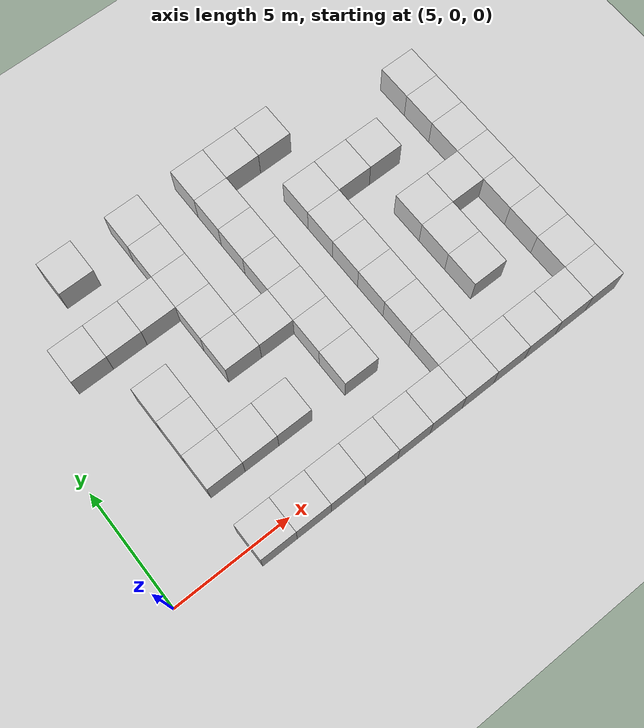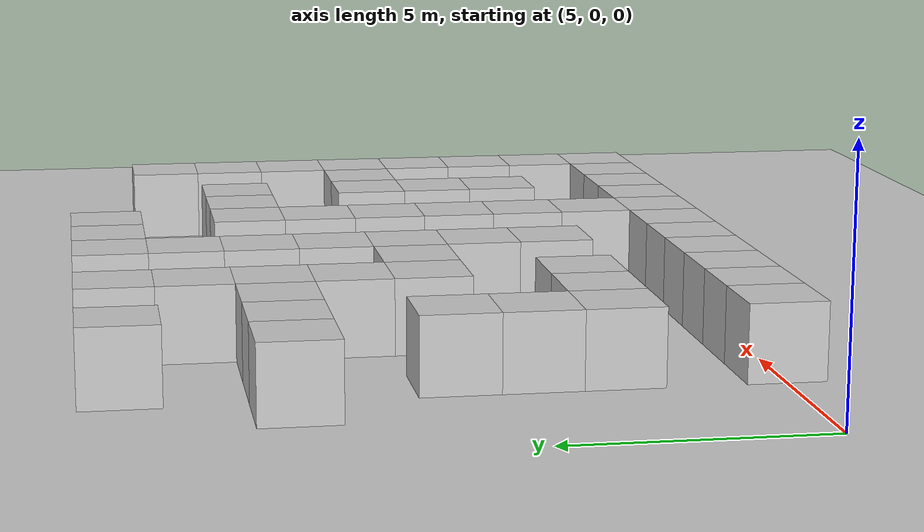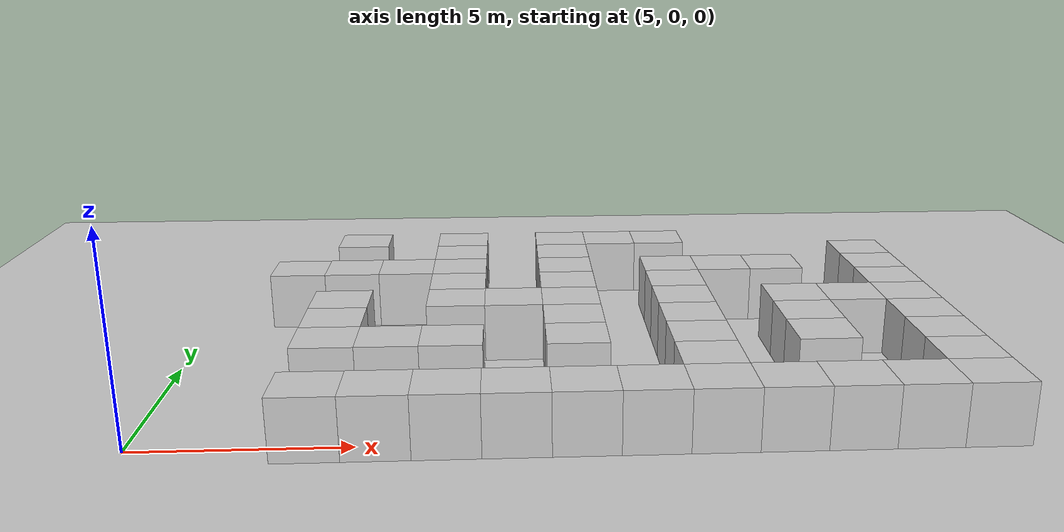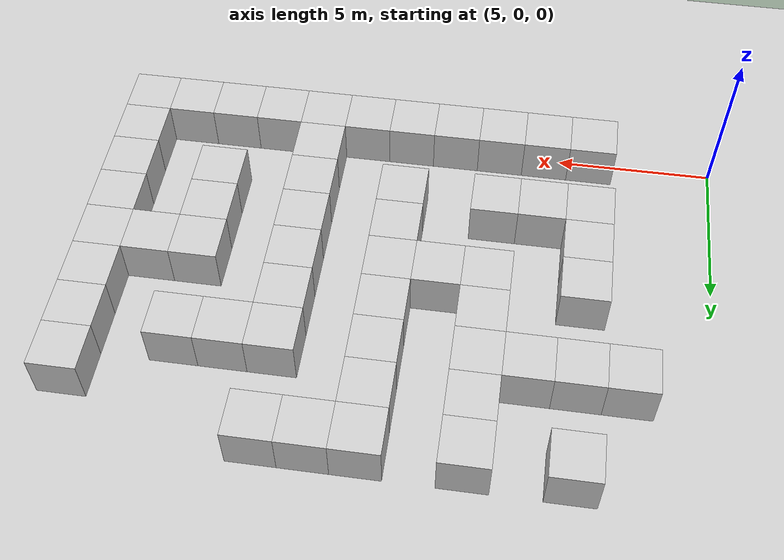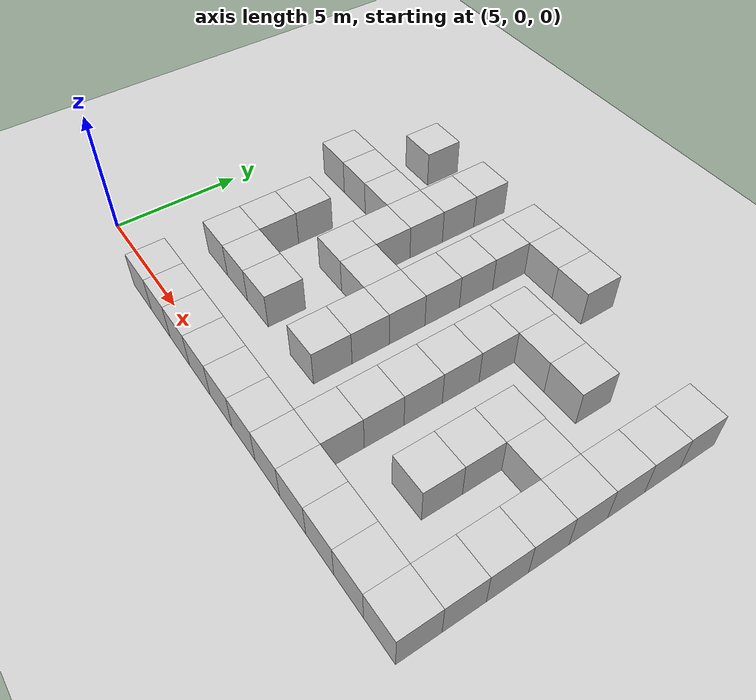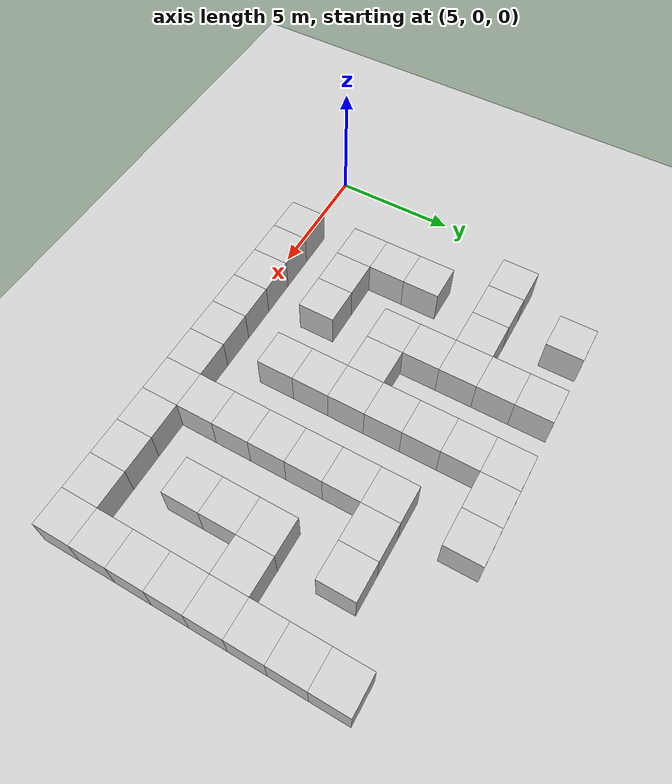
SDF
<sdf version="1.9">
 <world name="maze_world">
  <include><uri>https://fuel.gazebosim.org/1.0/OpenRobotics/models/Sun</uri></include>
  <include><uri>https://fuel.gazebosim.org/1.0/OpenRobotics/models/Ground Plane</uri></include>
  <model name="wall_6_0">
   <static>true</static>
   <pose>9 0 0.75 0 0 0</pose>
   <link name="link">
    <collision name="collision"><geometry><box><size>1.5 1.5 1.5</size></box></geometry></collision>
    <visual name="visual">
     <geometry><box><size>1.5 1.5 1.5</size></box></geometry>
     <material>
      <ambient>0.8 0.8 0.8 1</ambient>
      <diffuse>0.8 0.8 0.8 1</diffuse>
      <pbr>
       <metal>
        <albedo_map>file:///home/max/Repos/DHBW-Robotik/maze_runner_ws/src/maze_runner_gazebo/textures/simple_box.png</albedo_map>
        <roughness>0.9</roughness>
       </metal>
      </pbr>
     </material>
    </visual>
   </link>
  </model>
  <model name="wall_7_0">
   <static>true</static>
   <pose>10.5 0 0.75 0 0 0</pose>
   <link name="link">
    <collision name="collision"><geometry><box><size>1.5 1.5 1.5</size></box></geometry></collision>
    <visual name="visual">
     <geometry><box><size>1.5 1.5 1.5</size></box></geometry>
     <material>
      <ambient>0.8 0.8 0.8 1</ambient>
      <diffuse>0.8 0.8 0.8 1</diffuse>
      <pbr>
       <metal>
        <albedo_map>file:///home/max/Repos/DHBW-Robotik/maze_runner_ws/src/maze_runner_gazebo/textures/simple_box.png</albedo_map>
        <roughness>0.9</roughness>
       </metal>
      </pbr>
     </material>
    </visual>
   </link>
  </model>
  <model name="wall_8_0">
   <static>true</static>
   <pose>12 0 0.75 0 0 0</pose>
   <link name="link">
    <collision name="collision"><geometry><box><size>1.5 1.5 1.5</size></box></geometry></collision>
    <visual name="visual">
     <geometry><box><size>1.5 1.5 1.5</size></box></geometry>
     <material>
      <ambient>0.8 0.8 0.8 1</ambient>
      <diffuse>0.8 0.8 0.8 1</diffuse>
      <pbr>
       <metal>
        <albedo_map>file:///home/max/Repos/DHBW-Robotik/maze_runner_ws/src/maze_runner_gazebo/textures/simple_box.png</albedo_map>
        <roughness>0.9</roughness>
       </metal>
      </pbr>
     </material>
    </visual>
   </link>
  </model>
  <model name="wall_9_0">
   <static>true</static>
   <pose>13.5 0 0.75 0 0 0</pose>
   <link name="link">
    <collision name="collision"><geometry><box><size>1.5 1.5 1.5</size></box></geometry></collision>
    <visual name="visual">
     <geometry><box><size>1.5 1.5 1.5</size></box></geometry>
     <material>
      <ambient>0.8 0.8 0.8 1</ambient>
      <diffuse>0.8 0.8 0.8 1</diffuse>
      <pbr>
       <metal>
        <albedo_map>file:///home/max/Repos/DHBW-Robotik/maze_runner_ws/src/maze_runner_gazebo/textures/simple_box.png</albedo_map>
        <roughness>0.9</roughness>
       </metal>
      </pbr>
     </material>
    </visual>
   </link>
  </model>
  <model name="wall_10_0">
   <static>true</static>
   <pose>15 0 0.75 0 0 0</pose>
   <link name="link">
    <collision name="collision"><geometry><box><size>1.5 1.5 1.5</size></box></geometry></collision>
    <visual name="visual">
     <geometry><box><size>1.5 1.5 1.5</size></box></geometry>
     <material>
      <ambient>0.8 0.8 0.8 1</ambient>
      <diffuse>0.8 0.8 0.8 1</diffuse>
      <pbr>
       <metal>
        <albedo_map>file:///home/max/Repos/DHBW-Robotik/maze_runner_ws/src/maze_runner_gazebo/textures/simple_box.png</albedo_map>
        <roughness>0.9</roughness>
       </metal>
      </pbr>
     </material>
    </visual>
   </link>
  </model>
  <model name="wall_11_0">
   <static>true</static>
   <pose>16.5 0 0.75 0 0 0</pose>
   <link name="link">
    <collision name="collision"><geometry><box><size>1.5 1.5 1.5</size></box></geometry></collision>
    <visual name="visual">
     <geometry><box><size>1.5 1.5 1.5</size></box></geometry>
     <material>
      <ambient>0.8 0.8 0.8 1</ambient>
      <diffuse>0.8 0.8 0.8 1</diffuse>
      <pbr>
       <metal>
        <albedo_map>file:///home/max/Repos/DHBW-Robotik/maze_runner_ws/src/maze_runner_gazebo/textures/simple_box.png</albedo_map>
        <roughness>0.9</roughness>
       </metal>
      </pbr>
     </material>
    </visual>
   </link>
  </model>
  <model name="wall_12_0">
   <static>true</static>
   <pose>18 0 0.75 0 0 0</pose>
   <link name="link">
    <collision name="collision"><geometry><box><size>1.5 1.5 1.5</size></box></geometry></collision>
    <visual name="visual">
     <geometry><box><size>1.5 1.5 1.5</size></box></geometry>
     <material>
      <ambient>0.8 0.8 0.8 1</ambient>
      <diffuse>0.8 0.8 0.8 1</diffuse>
      <pbr>
       <metal>
        <albedo_map>file:///home/max/Repos/DHBW-Robotik/maze_runner_ws/src/maze_runner_gazebo/textures/simple_box.png</albedo_map>
        <roughness>0.9</roughness>
       </metal>
      </pbr>
     </material>
    </visual>
   </link>
  </model>
  <model name="wall_13_0">
   <static>true</static>
   <pose>19.5 0 0.75 0 0 0</pose>
   <link name="link">
    <collision name="collision"><geometry><box><size>1.5 1.5 1.5</size></box></geometry></collision>
    <visual name="visual">
     <geometry><box><size>1.5 1.5 1.5</size></box></geometry>
     <material>
      <ambient>0.8 0.8 0.8 1</ambient>
      <diffuse>0.8 0.8 0.8 1</diffuse>
      <pbr>
       <metal>
        <albedo_map>file:///home/max/Repos/DHBW-Robotik/maze_runner_ws/src/maze_runner_gazebo/textures/simple_box.png</albedo_map>
        <roughness>0.9</roughness>
       </metal>
      </pbr>
     </material>
    </visual>
   </link>
  </model>
  <model name="wall_14_0">
   <static>true</static>
   <pose>21 0 0.75 0 0 0</pose>
   <link name="link">
    <collision name="collision"><geometry><box><size>1.5 1.5 1.5</size></box></geometry></collision>
    <visual name="visual">
     <geometry><box><size>1.5 1.5 1.5</size></box></geometry>
     <material>
      <ambient>0.8 0.8 0.8 1</ambient>
      <diffuse>0.8 0.8 0.8 1</diffuse>
      <pbr>
       <metal>
        <albedo_map>file:///home/max/Repos/DHBW-Robotik/maze_runner_ws/src/maze_runner_gazebo/textures/simple_box.png</albedo_map>
        <roughness>0.9</roughness>
       </metal>
      </pbr>
     </material>
    </visual>
   </link>
  </model>
  <model name="wall_15_0">
   <static>true</static>
   <pose>22.5 0 0.75 0 0 0</pose>
   <link name="link">
    <collision name="collision"><geometry><box><size>1.5 1.5 1.5</size></box></geometry></collision>
    <visual name="visual">
     <geometry><box><size>1.5 1.5 1.5</size></box></geometry>
     <material>
      <ambient>0.8 0.8 0.8 1</ambient>
      <diffuse>0.8 0.8 0.8 1</diffuse>
      <pbr>
       <metal>
        <albedo_map>file:///home/max/Repos/DHBW-Robotik/maze_runner_ws/src/maze_runner_gazebo/textures/simple_box.png</albedo_map>
        <roughness>0.9</roughness>
       </metal>
      </pbr>
     </material>
    </visual>
   </link>
  </model>
  <model name="wall_16_0">
   <static>true</static>
   <pose>24 0 0.75 0 0 0</pose>
   <link name="link">
    <collision name="collision"><geometry><box><size>1.5 1.5 1.5</size></box></geometry></collision>
    <visual name="visual">
     <geometry><box><size>1.5 1.5 1.5</size></box></geometry>
     <material>
      <ambient>0.8 0.8 0.8 1</ambient>
      <diffuse>0.8 0.8 0.8 1</diffuse>
      <pbr>
       <metal>
        <albedo_map>file:///home/max/Repos/DHBW-Robotik/maze_runner_ws/src/maze_runner_gazebo/textures/simple_box.png</albedo_map>
        <roughness>0.9</roughness>
       </metal>
      </pbr>
     </material>
    </visual>
   </link>
  </model>
  <model name="wall_12_1">
   <static>true</static>
   <pose>18 1.5 0.75 0 0 0</pose>
   <link name="link">
    <collision name="collision"><geometry><box><size>1.5 1.5 1.5</size></box></geometry></collision>
    <visual name="visual">
     <geometry><box><size>1.5 1.5 1.5</size></box></geometry>
     <material>
      <ambient>0.8 0.8 0.8 1</ambient>
      <diffuse>0.8 0.8 0.8 1</diffuse>
      <pbr>
       <metal>
        <albedo_map>file:///home/max/Repos/DHBW-Robotik/maze_runner_ws/src/maze_runner_gazebo/textures/simple_box.png</albedo_map>
        <roughness>0.9</roughness>
       </metal>
      </pbr>
     </material>
    </visual>
   </link>
  </model>
  <model name="wall_16_1">
   <static>true</static>
   <pose>24 1.5 0.75 0 0 0</pose>
   <link name="link">
    <collision name="collision"><geometry><box><size>1.5 1.5 1.5</size></box></geometry></collision>
    <visual name="visual">
     <geometry><box><size>1.5 1.5 1.5</size></box></geometry>
     <material>
      <ambient>0.8 0.8 0.8 1</ambient>
      <diffuse>0.8 0.8 0.8 1</diffuse>
      <pbr>
       <metal>
        <albedo_map>file:///home/max/Repos/DHBW-Robotik/maze_runner_ws/src/maze_runner_gazebo/textures/simple_box.png</albedo_map>
        <roughness>0.9</roughness>
       </metal>
      </pbr>
     </material>
    </visual>
   </link>
  </model>
  <model name="wall_6_2">
   <static>true</static>
   <pose>9 3 0.75 0 0 0</pose>
   <link name="link">
    <collision name="collision"><geometry><box><size>1.5 1.5 1.5</size></box></geometry></collision>
    <visual name="visual">
     <geometry><box><size>1.5 1.5 1.5</size></box></geometry>
     <material>
      <ambient>0.8 0.8 0.8 1</ambient>
      <diffuse>0.8 0.8 0.8 1</diffuse>
      <pbr>
       <metal>
        <albedo_map>file:///home/max/Repos/DHBW-Robotik/maze_runner_ws/src/maze_runner_gazebo/textures/simple_box.png</albedo_map>
        <roughness>0.9</roughness>
       </metal>
      </pbr>
     </material>
    </visual>
   </link>
  </model>
  <model name="wall_7_2">
   <static>true</static>
   <pose>10.5 3 0.75 0 0 0</pose>
   <link name="link">
    <collision name="collision"><geometry><box><size>1.5 1.5 1.5</size></box></geometry></collision>
    <visual name="visual">
     <geometry><box><size>1.5 1.5 1.5</size></box></geometry>
     <material>
      <ambient>0.8 0.8 0.8 1</ambient>
      <diffuse>0.8 0.8 0.8 1</diffuse>
      <pbr>
       <metal>
        <albedo_map>file:///home/max/Repos/DHBW-Robotik/maze_runner_ws/src/maze_runner_gazebo/textures/simple_box.png</albedo_map>
        <roughness>0.9</roughness>
       </metal>
      </pbr>
     </material>
    </visual>
   </link>
  </model>
  <model name="wall_8_2">
   <static>true</static>
   <pose>12 3 0.75 0 0 0</pose>
   <link name="link">
    <collision name="collision"><geometry><box><size>1.5 1.5 1.5</size></box></geometry></collision>
    <visual name="visual">
     <geometry><box><size>1.5 1.5 1.5</size></box></geometry>
     <material>
      <ambient>0.8 0.8 0.8 1</ambient>
      <diffuse>0.8 0.8 0.8 1</diffuse>
      <pbr>
       <metal>
        <albedo_map>file:///home/max/Repos/DHBW-Robotik/maze_runner_ws/src/maze_runner_gazebo/textures/simple_box.png</albedo_map>
        <roughness>0.9</roughness>
       </metal>
      </pbr>
     </material>
    </visual>
   </link>
  </model>
  <model name="wall_10_2">
   <static>true</static>
   <pose>15 3 0.75 0 0 0</pose>
   <link name="link">
    <collision name="collision"><geometry><box><size>1.5 1.5 1.5</size></box></geometry></collision>
    <visual name="visual">
     <geometry><box><size>1.5 1.5 1.5</size></box></geometry>
     <material>
      <ambient>0.8 0.8 0.8 1</ambient>
      <diffuse>0.8 0.8 0.8 1</diffuse>
      <pbr>
       <metal>
        <albedo_map>file:///home/max/Repos/DHBW-Robotik/maze_runner_ws/src/maze_runner_gazebo/textures/simple_box.png</albedo_map>
        <roughness>0.9</roughness>
       </metal>
      </pbr>
     </material>
    </visual>
   </link>
  </model>
  <model name="wall_12_2">
   <static>true</static>
   <pose>18 3 0.75 0 0 0</pose>
   <link name="link">
    <collision name="collision"><geometry><box><size>1.5 1.5 1.5</size></box></geometry></collision>
    <visual name="visual">
     <geometry><box><size>1.5 1.5 1.5</size></box></geometry>
     <material>
      <ambient>0.8 0.8 0.8 1</ambient>
      <diffuse>0.8 0.8 0.8 1</diffuse>
      <pbr>
       <metal>
        <albedo_map>file:///home/max/Repos/DHBW-Robotik/maze_runner_ws/src/maze_runner_gazebo/textures/simple_box.png</albedo_map>
        <roughness>0.9</roughness>
       </metal>
      </pbr>
     </material>
    </visual>
   </link>
  </model>
  <model name="wall_14_2">
   <static>true</static>
   <pose>21 3 0.75 0 0 0</pose>
   <link name="link">
    <collision name="collision"><geometry><box><size>1.5 1.5 1.5</size></box></geometry></collision>
    <visual name="visual">
     <geometry><box><size>1.5 1.5 1.5</size></box></geometry>
     <material>
      <ambient>0.8 0.8 0.8 1</ambient>
      <diffuse>0.8 0.8 0.8 1</diffuse>
      <pbr>
       <metal>
        <albedo_map>file:///home/max/Repos/DHBW-Robotik/maze_runner_ws/src/maze_runner_gazebo/textures/simple_box.png</albedo_map>
        <roughness>0.9</roughness>
       </metal>
      </pbr>
     </material>
    </visual>
   </link>
  </model>
  <model name="wall_16_2">
   <static>true</static>
   <pose>24 3 0.75 0 0 0</pose>
   <link name="link">
    <collision name="collision"><geometry><box><size>1.5 1.5 1.5</size></box></geometry></collision>
    <visual name="visual">
     <geometry><box><size>1.5 1.5 1.5</size></box></geometry>
     <material>
      <ambient>0.8 0.8 0.8 1</ambient>
      <diffuse>0.8 0.8 0.8 1</diffuse>
      <pbr>
       <metal>
        <albedo_map>file:///home/max/Repos/DHBW-Robotik/maze_runner_ws/src/maze_runner_gazebo/textures/simple_box.png</albedo_map>
        <roughness>0.9</roughness>
       </metal>
      </pbr>
     </material>
    </visual>
   </link>
  </model>
  <model name="wall_6_3">
   <static>true</static>
   <pose>9 4.5 0.75 0 0 0</pose>
   <link name="link">
    <collision name="collision"><geometry><box><size>1.5 1.5 1.5</size></box></geometry></collision>
    <visual name="visual">
     <geometry><box><size>1.5 1.5 1.5</size></box></geometry>
     <material>
      <ambient>0.8 0.8 0.8 1</ambient>
      <diffuse>0.8 0.8 0.8 1</diffuse>
      <pbr>
       <metal>
        <albedo_map>file:///home/max/Repos/DHBW-Robotik/maze_runner_ws/src/maze_runner_gazebo/textures/simple_box.png</albedo_map>
        <roughness>0.9</roughness>
       </metal>
      </pbr>
     </material>
    </visual>
   </link>
  </model>
  <model name="wall_10_3">
   <static>true</static>
   <pose>15 4.5 0.75 0 0 0</pose>
   <link name="link">
    <collision name="collision"><geometry><box><size>1.5 1.5 1.5</size></box></geometry></collision>
    <visual name="visual">
     <geometry><box><size>1.5 1.5 1.5</size></box></geometry>
     <material>
      <ambient>0.8 0.8 0.8 1</ambient>
      <diffuse>0.8 0.8 0.8 1</diffuse>
      <pbr>
       <metal>
        <albedo_map>file:///home/max/Repos/DHBW-Robotik/maze_runner_ws/src/maze_runner_gazebo/textures/simple_box.png</albedo_map>
        <roughness>0.9</roughness>
       </metal>
      </pbr>
     </material>
    </visual>
   </link>
  </model>
  <model name="wall_12_3">
   <static>true</static>
   <pose>18 4.5 0.75 0 0 0</pose>
   <link name="link">
    <collision name="collision"><geometry><box><size>1.5 1.5 1.5</size></box></geometry></collision>
    <visual name="visual">
     <geometry><box><size>1.5 1.5 1.5</size></box></geometry>
     <material>
      <ambient>0.8 0.8 0.8 1</ambient>
      <diffuse>0.8 0.8 0.8 1</diffuse>
      <pbr>
       <metal>
        <albedo_map>file:///home/max/Repos/DHBW-Robotik/maze_runner_ws/src/maze_runner_gazebo/textures/simple_box.png</albedo_map>
        <roughness>0.9</roughness>
       </metal>
      </pbr>
     </material>
    </visual>
   </link>
  </model>
  <model name="wall_14_3">
   <static>true</static>
   <pose>21 4.5 0.75 0 0 0</pose>
   <link name="link">
    <collision name="collision"><geometry><box><size>1.5 1.5 1.5</size></box></geometry></collision>
    <visual name="visual">
     <geometry><box><size>1.5 1.5 1.5</size></box></geometry>
     <material>
      <ambient>0.8 0.8 0.8 1</ambient>
      <diffuse>0.8 0.8 0.8 1</diffuse>
      <pbr>
       <metal>
        <albedo_map>file:///home/max/Repos/DHBW-Robotik/maze_runner_ws/src/maze_runner_gazebo/textures/simple_box.png</albedo_map>
        <roughness>0.9</roughness>
       </metal>
      </pbr>
     </material>
    </visual>
   </link>
  </model>
  <model name="wall_16_3">
   <static>true</static>
   <pose>24 4.5 0.75 0 0 0</pose>
   <link name="link">
    <collision name="collision"><geometry><box><size>1.5 1.5 1.5</size></box></geometry></collision>
    <visual name="visual">
     <geometry><box><size>1.5 1.5 1.5</size></box></geometry>
     <material>
      <ambient>0.8 0.8 0.8 1</ambient>
      <diffuse>0.8 0.8 0.8 1</diffuse>
      <pbr>
       <metal>
        <albedo_map>file:///home/max/Repos/DHBW-Robotik/maze_runner_ws/src/maze_runner_gazebo/textures/simple_box.png</albedo_map>
        <roughness>0.9</roughness>
       </metal>
      </pbr>
     </material>
    </visual>
   </link>
  </model>
  <model name="wall_6_4">
   <static>true</static>
   <pose>9 6 0.75 0 0 0</pose>
   <link name="link">
    <collision name="collision"><geometry><box><size>1.5 1.5 1.5</size></box></geometry></collision>
    <visual name="visual">
     <geometry><box><size>1.5 1.5 1.5</size></box></geometry>
     <material>
      <ambient>0.8 0.8 0.8 1</ambient>
      <diffuse>0.8 0.8 0.8 1</diffuse>
      <pbr>
       <metal>
        <albedo_map>file:///home/max/Repos/DHBW-Robotik/maze_runner_ws/src/maze_runner_gazebo/textures/simple_box.png</albedo_map>
        <roughness>0.9</roughness>
       </metal>
      </pbr>
     </material>
    </visual>
   </link>
  </model>
  <model name="wall_8_4">
   <static>true</static>
   <pose>12 6 0.75 0 0 0</pose>
   <link name="link">
    <collision name="collision"><geometry><box><size>1.5 1.5 1.5</size></box></geometry></collision>
    <visual name="visual">
     <geometry><box><size>1.5 1.5 1.5</size></box></geometry>
     <material>
      <ambient>0.8 0.8 0.8 1</ambient>
      <diffuse>0.8 0.8 0.8 1</diffuse>
      <pbr>
       <metal>
        <albedo_map>file:///home/max/Repos/DHBW-Robotik/maze_runner_ws/src/maze_runner_gazebo/textures/simple_box.png</albedo_map>
        <roughness>0.9</roughness>
       </metal>
      </pbr>
     </material>
    </visual>
   </link>
  </model>
  <model name="wall_9_4">
   <static>true</static>
   <pose>13.5 6 0.75 0 0 0</pose>
   <link name="link">
    <collision name="collision"><geometry><box><size>1.5 1.5 1.5</size></box></geometry></collision>
    <visual name="visual">
     <geometry><box><size>1.5 1.5 1.5</size></box></geometry>
     <material>
      <ambient>0.8 0.8 0.8 1</ambient>
      <diffuse>0.8 0.8 0.8 1</diffuse>
      <pbr>
       <metal>
        <albedo_map>file:///home/max/Repos/DHBW-Robotik/maze_runner_ws/src/maze_runner_gazebo/textures/simple_box.png</albedo_map>
        <roughness>0.9</roughness>
       </metal>
      </pbr>
     </material>
    </visual>
   </link>
  </model>
  <model name="wall_10_4">
   <static>true</static>
   <pose>15 6 0.75 0 0 0</pose>
   <link name="link">
    <collision name="collision"><geometry><box><size>1.5 1.5 1.5</size></box></geometry></collision>
    <visual name="visual">
     <geometry><box><size>1.5 1.5 1.5</size></box></geometry>
     <material>
      <ambient>0.8 0.8 0.8 1</ambient>
      <diffuse>0.8 0.8 0.8 1</diffuse>
      <pbr>
       <metal>
        <albedo_map>file:///home/max/Repos/DHBW-Robotik/maze_runner_ws/src/maze_runner_gazebo/textures/simple_box.png</albedo_map>
        <roughness>0.9</roughness>
       </metal>
      </pbr>
     </material>
    </visual>
   </link>
  </model>
  <model name="wall_12_4">
   <static>true</static>
   <pose>18 6 0.75 0 0 0</pose>
   <link name="link">
    <collision name="collision"><geometry><box><size>1.5 1.5 1.5</size></box></geometry></collision>
    <visual name="visual">
     <geometry><box><size>1.5 1.5 1.5</size></box></geometry>
     <material>
      <ambient>0.8 0.8 0.8 1</ambient>
      <diffuse>0.8 0.8 0.8 1</diffuse>
      <pbr>
       <metal>
        <albedo_map>file:///home/max/Repos/DHBW-Robotik/maze_runner_ws/src/maze_runner_gazebo/textures/simple_box.png</albedo_map>
        <roughness>0.9</roughness>
       </metal>
      </pbr>
     </material>
    </visual>
   </link>
  </model>
  <model name="wall_14_4">
   <static>true</static>
   <pose>21 6 0.75 0 0 0</pose>
   <link name="link">
    <collision name="collision"><geometry><box><size>1.5 1.5 1.5</size></box></geometry></collision>
    <visual name="visual">
     <geometry><box><size>1.5 1.5 1.5</size></box></geometry>
     <material>
      <ambient>0.8 0.8 0.8 1</ambient>
      <diffuse>0.8 0.8 0.8 1</diffuse>
      <pbr>
       <metal>
        <albedo_map>file:///home/max/Repos/DHBW-Robotik/maze_runner_ws/src/maze_runner_gazebo/textures/simple_box.png</albedo_map>
        <roughness>0.9</roughness>
       </metal>
      </pbr>
     </material>
    </visual>
   </link>
  </model>
  <model name="wall_15_4">
   <static>true</static>
   <pose>22.5 6 0.75 0 0 0</pose>
   <link name="link">
    <collision name="collision"><geometry><box><size>1.5 1.5 1.5</size></box></geometry></collision>
    <visual name="visual">
     <geometry><box><size>1.5 1.5 1.5</size></box></geometry>
     <material>
      <ambient>0.8 0.8 0.8 1</ambient>
      <diffuse>0.8 0.8 0.8 1</diffuse>
      <pbr>
       <metal>
        <albedo_map>file:///home/max/Repos/DHBW-Robotik/maze_runner_ws/src/maze_runner_gazebo/textures/simple_box.png</albedo_map>
        <roughness>0.9</roughness>
       </metal>
      </pbr>
     </material>
    </visual>
   </link>
  </model>
  <model name="wall_16_4">
   <static>true</static>
   <pose>24 6 0.75 0 0 0</pose>
   <link name="link">
    <collision name="collision"><geometry><box><size>1.5 1.5 1.5</size></box></geometry></collision>
    <visual name="visual">
     <geometry><box><size>1.5 1.5 1.5</size></box></geometry>
     <material>
      <ambient>0.8 0.8 0.8 1</ambient>
      <diffuse>0.8 0.8 0.8 1</diffuse>
      <pbr>
       <metal>
        <albedo_map>file:///home/max/Repos/DHBW-Robotik/maze_runner_ws/src/maze_runner_gazebo/textures/simple_box.png</albedo_map>
        <roughness>0.9</roughness>
       </metal>
      </pbr>
     </material>
    </visual>
   </link>
  </model>
  <model name="wall_8_5">
   <static>true</static>
   <pose>12 7.5 0.75 0 0 0</pose>
   <link name="link">
    <collision name="collision"><geometry><box><size>1.5 1.5 1.5</size></box></geometry></collision>
    <visual name="visual">
     <geometry><box><size>1.5 1.5 1.5</size></box></geometry>
     <material>
      <ambient>0.8 0.8 0.8 1</ambient>
      <diffuse>0.8 0.8 0.8 1</diffuse>
      <pbr>
       <metal>
        <albedo_map>file:///home/max/Repos/DHBW-Robotik/maze_runner_ws/src/maze_runner_gazebo/textures/simple_box.png</albedo_map>
        <roughness>0.9</roughness>
       </metal>
      </pbr>
     </material>
    </visual>
   </link>
  </model>
  <model name="wall_10_5">
   <static>true</static>
   <pose>15 7.5 0.75 0 0 0</pose>
   <link name="link">
    <collision name="collision"><geometry><box><size>1.5 1.5 1.5</size></box></geometry></collision>
    <visual name="visual">
     <geometry><box><size>1.5 1.5 1.5</size></box></geometry>
     <material>
      <ambient>0.8 0.8 0.8 1</ambient>
      <diffuse>0.8 0.8 0.8 1</diffuse>
      <pbr>
       <metal>
        <albedo_map>file:///home/max/Repos/DHBW-Robotik/maze_runner_ws/src/maze_runner_gazebo/textures/simple_box.png</albedo_map>
        <roughness>0.9</roughness>
       </metal>
      </pbr>
     </material>
    </visual>
   </link>
  </model>
  <model name="wall_12_5">
   <static>true</static>
   <pose>18 7.5 0.75 0 0 0</pose>
   <link name="link">
    <collision name="collision"><geometry><box><size>1.5 1.5 1.5</size></box></geometry></collision>
    <visual name="visual">
     <geometry><box><size>1.5 1.5 1.5</size></box></geometry>
     <material>
      <ambient>0.8 0.8 0.8 1</ambient>
      <diffuse>0.8 0.8 0.8 1</diffuse>
      <pbr>
       <metal>
        <albedo_map>file:///home/max/Repos/DHBW-Robotik/maze_runner_ws/src/maze_runner_gazebo/textures/simple_box.png</albedo_map>
        <roughness>0.9</roughness>
       </metal>
      </pbr>
     </material>
    </visual>
   </link>
  </model>
  <model name="wall_16_5">
   <static>true</static>
   <pose>24 7.5 0.75 0 0 0</pose>
   <link name="link">
    <collision name="collision"><geometry><box><size>1.5 1.5 1.5</size></box></geometry></collision>
    <visual name="visual">
     <geometry><box><size>1.5 1.5 1.5</size></box></geometry>
     <material>
      <ambient>0.8 0.8 0.8 1</ambient>
      <diffuse>0.8 0.8 0.8 1</diffuse>
      <pbr>
       <metal>
        <albedo_map>file:///home/max/Repos/DHBW-Robotik/maze_runner_ws/src/maze_runner_gazebo/textures/simple_box.png</albedo_map>
        <roughness>0.9</roughness>
       </metal>
      </pbr>
     </material>
    </visual>
   </link>
  </model>
  <model name="wall_5_6">
   <static>true</static>
   <pose>7.5 9 0.75 0 0 0</pose>
   <link name="link">
    <collision name="collision"><geometry><box><size>1.5 1.5 1.5</size></box></geometry></collision>
    <visual name="visual">
     <geometry><box><size>1.5 1.5 1.5</size></box></geometry>
     <material>
      <ambient>0.8 0.8 0.8 1</ambient>
      <diffuse>0.8 0.8 0.8 1</diffuse>
      <pbr>
       <metal>
        <albedo_map>file:///home/max/Repos/DHBW-Robotik/maze_runner_ws/src/maze_runner_gazebo/textures/simple_box.png</albedo_map>
        <roughness>0.9</roughness>
       </metal>
      </pbr>
     </material>
    </visual>
   </link>
  </model>
  <model name="wall_6_6">
   <static>true</static>
   <pose>9 9 0.75 0 0 0</pose>
   <link name="link">
    <collision name="collision"><geometry><box><size>1.5 1.5 1.5</size></box></geometry></collision>
    <visual name="visual">
     <geometry><box><size>1.5 1.5 1.5</size></box></geometry>
     <material>
      <ambient>0.8 0.8 0.8 1</ambient>
      <diffuse>0.8 0.8 0.8 1</diffuse>
      <pbr>
       <metal>
        <albedo_map>file:///home/max/Repos/DHBW-Robotik/maze_runner_ws/src/maze_runner_gazebo/textures/simple_box.png</albedo_map>
        <roughness>0.9</roughness>
       </metal>
      </pbr>
     </material>
    </visual>
   </link>
  </model>
  <model name="wall_7_6">
   <static>true</static>
   <pose>10.5 9 0.75 0 0 0</pose>
   <link name="link">
    <collision name="collision"><geometry><box><size>1.5 1.5 1.5</size></box></geometry></collision>
    <visual name="visual">
     <geometry><box><size>1.5 1.5 1.5</size></box></geometry>
     <material>
      <ambient>0.8 0.8 0.8 1</ambient>
      <diffuse>0.8 0.8 0.8 1</diffuse>
      <pbr>
       <metal>
        <albedo_map>file:///home/max/Repos/DHBW-Robotik/maze_runner_ws/src/maze_runner_gazebo/textures/simple_box.png</albedo_map>
        <roughness>0.9</roughness>
       </metal>
      </pbr>
     </material>
    </visual>
   </link>
  </model>
  <model name="wall_8_6">
   <static>true</static>
   <pose>12 9 0.75 0 0 0</pose>
   <link name="link">
    <collision name="collision"><geometry><box><size>1.5 1.5 1.5</size></box></geometry></collision>
    <visual name="visual">
     <geometry><box><size>1.5 1.5 1.5</size></box></geometry>
     <material>
      <ambient>0.8 0.8 0.8 1</ambient>
      <diffuse>0.8 0.8 0.8 1</diffuse>
      <pbr>
       <metal>
        <albedo_map>file:///home/max/Repos/DHBW-Robotik/maze_runner_ws/src/maze_runner_gazebo/textures/simple_box.png</albedo_map>
        <roughness>0.9</roughness>
       </metal>
      </pbr>
     </material>
    </visual>
   </link>
  </model>
  <model name="wall_10_6">
   <static>true</static>
   <pose>15 9 0.75 0 0 0</pose>
   <link name="link">
    <collision name="collision"><geometry><box><size>1.5 1.5 1.5</size></box></geometry></collision>
    <visual name="visual">
     <geometry><box><size>1.5 1.5 1.5</size></box></geometry>
     <material>
      <ambient>0.8 0.8 0.8 1</ambient>
      <diffuse>0.8 0.8 0.8 1</diffuse>
      <pbr>
       <metal>
        <albedo_map>file:///home/max/Repos/DHBW-Robotik/maze_runner_ws/src/maze_runner_gazebo/textures/simple_box.png</albedo_map>
        <roughness>0.9</roughness>
       </metal>
      </pbr>
     </material>
    </visual>
   </link>
  </model>
  <model name="wall_12_6">
   <static>true</static>
   <pose>18 9 0.75 0 0 0</pose>
   <link name="link">
    <collision name="collision"><geometry><box><size>1.5 1.5 1.5</size></box></geometry></collision>
    <visual name="visual">
     <geometry><box><size>1.5 1.5 1.5</size></box></geometry>
     <material>
      <ambient>0.8 0.8 0.8 1</ambient>
      <diffuse>0.8 0.8 0.8 1</diffuse>
      <pbr>
       <metal>
        <albedo_map>file:///home/max/Repos/DHBW-Robotik/maze_runner_ws/src/maze_runner_gazebo/textures/simple_box.png</albedo_map>
        <roughness>0.9</roughness>
       </metal>
      </pbr>
     </material>
    </visual>
   </link>
  </model>
  <model name="wall_13_6">
   <static>true</static>
   <pose>19.5 9 0.75 0 0 0</pose>
   <link name="link">
    <collision name="collision"><geometry><box><size>1.5 1.5 1.5</size></box></geometry></collision>
    <visual name="visual">
     <geometry><box><size>1.5 1.5 1.5</size></box></geometry>
     <material>
      <ambient>0.8 0.8 0.8 1</ambient>
      <diffuse>0.8 0.8 0.8 1</diffuse>
      <pbr>
       <metal>
        <albedo_map>file:///home/max/Repos/DHBW-Robotik/maze_runner_ws/src/maze_runner_gazebo/textures/simple_box.png</albedo_map>
        <roughness>0.9</roughness>
       </metal>
      </pbr>
     </material>
    </visual>
   </link>
  </model>
  <model name="wall_14_6">
   <static>true</static>
   <pose>21 9 0.75 0 0 0</pose>
   <link name="link">
    <collision name="collision"><geometry><box><size>1.5 1.5 1.5</size></box></geometry></collision>
    <visual name="visual">
     <geometry><box><size>1.5 1.5 1.5</size></box></geometry>
     <material>
      <ambient>0.8 0.8 0.8 1</ambient>
      <diffuse>0.8 0.8 0.8 1</diffuse>
      <pbr>
       <metal>
        <albedo_map>file:///home/max/Repos/DHBW-Robotik/maze_runner_ws/src/maze_runner_gazebo/textures/simple_box.png</albedo_map>
        <roughness>0.9</roughness>
       </metal>
      </pbr>
     </material>
    </visual>
   </link>
  </model>
  <model name="wall_16_6">
   <static>true</static>
   <pose>24 9 0.75 0 0 0</pose>
   <link name="link">
    <collision name="collision"><geometry><box><size>1.5 1.5 1.5</size></box></geometry></collision>
    <visual name="visual">
     <geometry><box><size>1.5 1.5 1.5</size></box></geometry>
     <material>
      <ambient>0.8 0.8 0.8 1</ambient>
      <diffuse>0.8 0.8 0.8 1</diffuse>
      <pbr>
       <metal>
        <albedo_map>file:///home/max/Repos/DHBW-Robotik/maze_runner_ws/src/maze_runner_gazebo/textures/simple_box.png</albedo_map>
        <roughness>0.9</roughness>
       </metal>
      </pbr>
     </material>
    </visual>
   </link>
  </model>
  <model name="wall_8_7">
   <static>true</static>
   <pose>12 10.5 0.75 0 0 0</pose>
   <link name="link">
    <collision name="collision"><geometry><box><size>1.5 1.5 1.5</size></box></geometry></collision>
    <visual name="visual">
     <geometry><box><size>1.5 1.5 1.5</size></box></geometry>
     <material>
      <ambient>0.8 0.8 0.8 1</ambient>
      <diffuse>0.8 0.8 0.8 1</diffuse>
      <pbr>
       <metal>
        <albedo_map>file:///home/max/Repos/DHBW-Robotik/maze_runner_ws/src/maze_runner_gazebo/textures/simple_box.png</albedo_map>
        <roughness>0.9</roughness>
       </metal>
      </pbr>
     </material>
    </visual>
   </link>
  </model>
  <model name="wall_10_7">
   <static>true</static>
   <pose>15 10.5 0.75 0 0 0</pose>
   <link name="link">
    <collision name="collision"><geometry><box><size>1.5 1.5 1.5</size></box></geometry></collision>
    <visual name="visual">
     <geometry><box><size>1.5 1.5 1.5</size></box></geometry>
     <material>
      <ambient>0.8 0.8 0.8 1</ambient>
      <diffuse>0.8 0.8 0.8 1</diffuse>
      <pbr>
       <metal>
        <albedo_map>file:///home/max/Repos/DHBW-Robotik/maze_runner_ws/src/maze_runner_gazebo/textures/simple_box.png</albedo_map>
        <roughness>0.9</roughness>
       </metal>
      </pbr>
     </material>
    </visual>
   </link>
  </model>
  <model name="wall_16_7">
   <static>true</static>
   <pose>24 10.5 0.75 0 0 0</pose>
   <link name="link">
    <collision name="collision"><geometry><box><size>1.5 1.5 1.5</size></box></geometry></collision>
    <visual name="visual">
     <geometry><box><size>1.5 1.5 1.5</size></box></geometry>
     <material>
      <ambient>0.8 0.8 0.8 1</ambient>
      <diffuse>0.8 0.8 0.8 1</diffuse>
      <pbr>
       <metal>
        <albedo_map>file:///home/max/Repos/DHBW-Robotik/maze_runner_ws/src/maze_runner_gazebo/textures/simple_box.png</albedo_map>
        <roughness>0.9</roughness>
       </metal>
      </pbr>
     </material>
    </visual>
   </link>
  </model>
  <model name="wall_6_8">
   <static>true</static>
   <pose>9 12 0.75 0 0 0</pose>
   <link name="link">
    <collision name="collision"><geometry><box><size>1.5 1.5 1.5</size></box></geometry></collision>
    <visual name="visual">
     <geometry><box><size>1.5 1.5 1.5</size></box></geometry>
     <material>
      <ambient>0.8 0.8 0.8 1</ambient>
      <diffuse>0.8 0.8 0.8 1</diffuse>
      <pbr>
       <metal>
        <albedo_map>file:///home/max/Repos/DHBW-Robotik/maze_runner_ws/src/maze_runner_gazebo/textures/simple_box.png</albedo_map>
        <roughness>0.9</roughness>
       </metal>
      </pbr>
     </material>
    </visual>
   </link>
  </model>
  <model name="wall_8_8">
   <static>true</static>
   <pose>12 12 0.75 0 0 0</pose>
   <link name="link">
    <collision name="collision"><geometry><box><size>1.5 1.5 1.5</size></box></geometry></collision>
    <visual name="visual">
     <geometry><box><size>1.5 1.5 1.5</size></box></geometry>
     <material>
      <ambient>0.8 0.8 0.8 1</ambient>
      <diffuse>0.8 0.8 0.8 1</diffuse>
      <pbr>
       <metal>
        <albedo_map>file:///home/max/Repos/DHBW-Robotik/maze_runner_ws/src/maze_runner_gazebo/textures/simple_box.png</albedo_map>
        <roughness>0.9</roughness>
       </metal>
      </pbr>
     </material>
    </visual>
   </link>
  </model>
  <model name="wall_10_8">
   <static>true</static>
   <pose>15 12 0.75 0 0 0</pose>
   <link name="link">
    <collision name="collision"><geometry><box><size>1.5 1.5 1.5</size></box></geometry></collision>
    <visual name="visual">
     <geometry><box><size>1.5 1.5 1.5</size></box></geometry>
     <material>
      <ambient>0.8 0.8 0.8 1</ambient>
      <diffuse>0.8 0.8 0.8 1</diffuse>
      <pbr>
       <metal>
        <albedo_map>file:///home/max/Repos/DHBW-Robotik/maze_runner_ws/src/maze_runner_gazebo/textures/simple_box.png</albedo_map>
        <roughness>0.9</roughness>
       </metal>
      </pbr>
     </material>
    </visual>
   </link>
  </model>
  <model name="wall_11_8">
   <static>true</static>
   <pose>16.5 12 0.75 0 0 0</pose>
   <link name="link">
    <collision name="collision"><geometry><box><size>1.5 1.5 1.5</size></box></geometry></collision>
    <visual name="visual">
     <geometry><box><size>1.5 1.5 1.5</size></box></geometry>
     <material>
      <ambient>0.8 0.8 0.8 1</ambient>
      <diffuse>0.8 0.8 0.8 1</diffuse>
      <pbr>
       <metal>
        <albedo_map>file:///home/max/Repos/DHBW-Robotik/maze_runner_ws/src/maze_runner_gazebo/textures/simple_box.png</albedo_map>
        <roughness>0.9</roughness>
       </metal>
      </pbr>
     </material>
    </visual>
   </link>
  </model>
  <model name="wall_12_8">
   <static>true</static>
   <pose>18 12 0.75 0 0 0</pose>
   <link name="link">
    <collision name="collision"><geometry><box><size>1.5 1.5 1.5</size></box></geometry></collision>
    <visual name="visual">
     <geometry><box><size>1.5 1.5 1.5</size></box></geometry>
     <material>
      <ambient>0.8 0.8 0.8 1</ambient>
      <diffuse>0.8 0.8 0.8 1</diffuse>
      <pbr>
       <metal>
        <albedo_map>file:///home/max/Repos/DHBW-Robotik/maze_runner_ws/src/maze_runner_gazebo/textures/simple_box.png</albedo_map>
        <roughness>0.9</roughness>
       </metal>
      </pbr>
     </material>
    </visual>
   </link>
  </model>
 </world>
</sdf>
